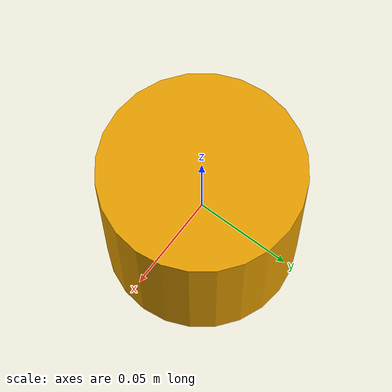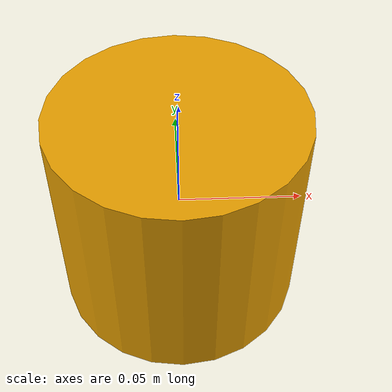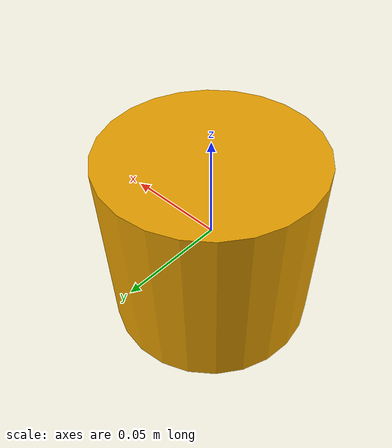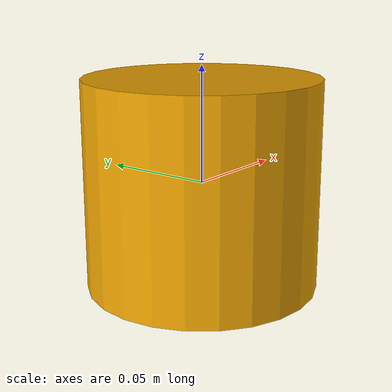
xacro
<?xml version="1.0"?>
<robot name="cup" xmlns:xacro="http://www.ros.org/wiki/xacro">

<xacro:property name="cup_l"  value="0.09"    />
<xacro:property name="cup_r"  value="0.05"   />

<xacro:macro name="box_I" params="m w h d">
    <inertia ixx="${1/12 * m * (d*d  + h * h)}" ixy="0.0" ixz="0.0" iyy="${1/12 * m * (h * h + w * w)}" iyz="0.0" izz="${1/12 * m * (w * w + d * d)}" />
</xacro:macro>

<xacro:macro name="cyl_I" params="m r">
        <inertia ixx="${0.5 * m * r*r}" ixy="0.0" ixz="0.0" iyy="${0.5 * m * r*r}" iyz="0.0" izz="${0.5 * m * r*r}" />
</xacro:macro>

<link name="cup_link">
	<visual>
		<origin xyz="0 0 0" rpy="0 0 0"/>
		<geometry>
			<cylinder length="${cup_l}" radius="${cup_r}"/>
		</geometry>
        </visual>

	<inertial>
		<origin xyz="0 0 0" rpy="0 0 0"/>
		<mass value="1"/>
		<xacro:cyl_I m="1.0" r="${cup_r}"/>
	</inertial>

	<collision>
		<origin xyz="0 0 0" rpy="0 0 0"/>
		<geometry>
			<cylinder length="${cup_l}" radius="${cup_r}"/>
		</geometry>
  	</collision>

</link>

</robot>
